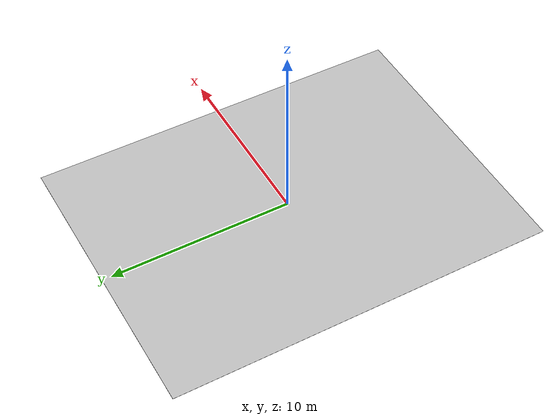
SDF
<?xml version="1.0" encoding="UTF-8"?>
<sdf version="1.6">
   <model name="warehouse_ground">
      <static>true</static>
      <link name="link">
         <collision name="collision">
            <geometry>
               <box>
                  <normal>0 0 1</normal>
                  <size>16 21 0.01  0 0 0</size>
               </box>
            </geometry>
            <surface>
               <friction>
                  <ode>
                     <mu>100</mu>
                     <mu2>50</mu2>
                  </ode>
               </friction>
            </surface>
         </collision>
         <visual name="visual">
            <cast_shadows>false</cast_shadows>
            <geometry>
               <box>
                  <normal>0 0 1</normal>
                  <size>16 21 0.01  0 0 0</size>
               </box>
            </geometry>
            <material>
               <script>
                  <uri>model://warehouse_ground/materials/scripts</uri>
                  <uri>model://warehouse_ground/materials/textures/</uri>
                  <name>WareHouseGround/Image</name>
               </script>
            </material>
         </visual>
      </link>
   </model>
</sdf>
